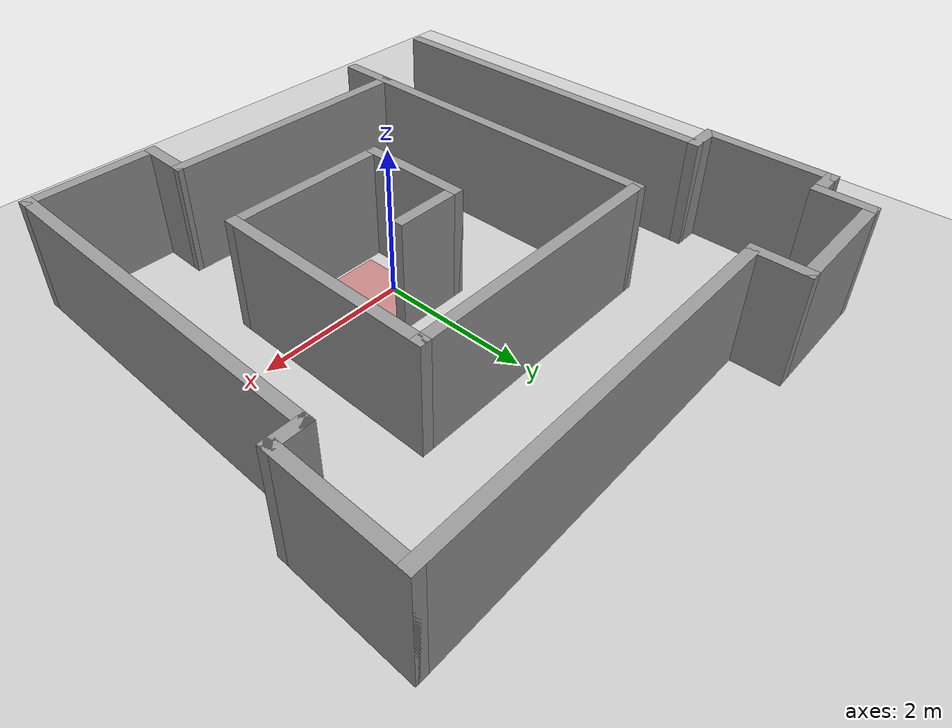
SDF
<sdf version="1.7">
 <world name="default">
  <light name="sun" type="directional">
   <pose>0 0 10 0 -0 0</pose>
   <diffuse>0.8 0.8 0.8 1</diffuse>
   <specular>0.2 0.2 0.2 1</specular>
   <attenuation>
    <range>1000</range>
    <constant>0.9</constant>
    <linear>0.01</linear>
    <quadratic>0.001</quadratic>
   </attenuation>
   <direction>-0.5 0.1 -0.9</direction>
   <spot><inner_angle>0</inner_angle><outer_angle>0</outer_angle><falloff>0</falloff></spot>
  </light>
  <model name="ground_plane">
   <static>1</static>
   <link name="link">
    <collision name="collision">
     <geometry><plane><normal>0 0 1</normal><size>100 100</size></plane></geometry>
     <surface>
      <contact><collide_bitmask>65535</collide_bitmask></contact>
      <friction><ode><mu>100</mu><mu2>50</mu2></ode></friction>
     </surface>
    </collision>
    <visual name="visual">
     <cast_shadows>0</cast_shadows>
     <geometry><plane><normal>0 0 1</normal><size>100 100</size></plane></geometry>
     <material>
      <script><uri>file://media/materials/scripts/gazebo.material</uri><name>Gazebo/Grey</name></script>
     </material>
    </visual>
   </link>
  </model>
  <gravity>0 0 -9.8</gravity>
  <magnetic_field>6e-06 2.3e-05 -4.2e-05</magnetic_field>
  <atmosphere type="adiabatic"/>
  <physics type="ode">
   <max_step_size>0.001</max_step_size>
   <real_time_factor>1</real_time_factor>
   <real_time_update_rate>1000</real_time_update_rate>
  </physics>
  <scene><ambient>0.4 0.4 0.4 1</ambient><background>0.7 0.7 0.7 1</background><shadows>1</shadows></scene>
  <spherical_coordinates>
   <surface_model>EARTH_WGS84</surface_model>
   <latitude_deg>0</latitude_deg>
   <longitude_deg>0</longitude_deg>
   <elevation>0</elevation>
   <heading_deg>0</heading_deg>
  </spherical_coordinates>
  <model name="map_1">
   <pose>-0.194473 0.7387 0 0 -0 0</pose>
   <link name="Wall_0">
    <collision name="Wall_0_Collision">
     <geometry><box><size>5 0.15 1.5</size></box></geometry>
     <pose>0 0 0.75 0 -0 0</pose>
    </collision>
    <visual name="Wall_0_Visual">
     <pose>0 0 0.75 0 -0 0</pose>
     <geometry><box><size>5 0.15 1.5</size></box></geometry>
     <material>
      <script><uri>file://media/materials/scripts/gazebo.material</uri><name>Gazebo/Grey</name></script>
      <ambient>1 1 1 1</ambient>
     </material>
     <meta><layer>0</layer></meta>
    </visual>
    <pose>-3.175 -1.10709 0 0 -0 1.5708</pose>
   </link>
   <link name="Wall_1">
    <collision name="Wall_1_Collision">
     <geometry><box><size>0.5 0.15 1.5</size></box></geometry>
     <pose>0 0 0.75 0 -0 0</pose>
    </collision>
    <visual name="Wall_1_Visual">
     <pose>0 0 0.75 0 -0 0</pose>
     <geometry><box><size>0.5 0.15 1.5</size></box></geometry>
     <material>
      <script><uri>file://media/materials/scripts/gazebo.material</uri><name>Gazebo/Grey</name></script>
      <ambient>1 1 1 1</ambient>
     </material>
     <meta><layer>0</layer></meta>
    </visual>
    <pose>-3.35 1.31791 0 0 -0 3.14159</pose>
   </link>
   <link name="Wall_10">
    <collision name="Wall_10_Collision">
     <geometry><box><size>5.25 0.15 1.5</size></box></geometry>
     <pose>0 0 0.75 0 -0 0</pose>
    </collision>
    <visual name="Wall_10_Visual">
     <pose>0 0 0.75 0 -0 0</pose>
     <geometry><box><size>5.25 0.15 1.5</size></box></geometry>
     <material>
      <script><uri>file://media/materials/scripts/gazebo.material</uri><name>Gazebo/Grey</name></script>
      <ambient>1 1 1 1</ambient>
     </material>
     <meta><layer>0</layer></meta>
    </visual>
    <pose>0.975 2.91791 0 0 -0 0</pose>
   </link>
   <link name="Wall_11">
    <collision name="Wall_11_Collision">
     <geometry><box><size>1.75 0.15 1.5</size></box></geometry>
     <pose>0 0 0.75 0 -0 0</pose>
    </collision>
    <visual name="Wall_11_Visual">
     <pose>0 0 0.75 0 -0 0</pose>
     <geometry><box><size>1.75 0.15 1.5</size></box></geometry>
     <material>
      <script><uri>file://media/materials/scripts/gazebo.material</uri><name>Gazebo/Grey</name></script>
      <ambient>1 1 1 1</ambient>
     </material>
     <meta><layer>0</layer></meta>
    </visual>
    <pose>3.525 2.11791 0 0 -0 -1.5708</pose>
   </link>
   <link name="Wall_12">
    <collision name="Wall_12_Collision">
     <geometry><box><size>0.5 0.15 1.5</size></box></geometry>
     <pose>0 0 0.75 0 -0 0</pose>
    </collision>
    <visual name="Wall_12_Visual">
     <pose>0 0 0.75 0 -0 0</pose>
     <geometry><box><size>0.5 0.15 1.5</size></box></geometry>
     <material>
      <script><uri>file://media/materials/scripts/gazebo.material</uri><name>Gazebo/Grey</name></script>
      <ambient>1 1 1 1</ambient>
     </material>
     <meta><layer>0</layer></meta>
    </visual>
    <pose>3.35 1.31791 0 0 -0 3.14159</pose>
   </link>
   <link name="Wall_13">
    <collision name="Wall_13_Collision">
     <geometry><box><size>5 0.15 1.5</size></box></geometry>
     <pose>0 0 0.75 0 -0 0</pose>
    </collision>
    <visual name="Wall_13_Visual">
     <pose>0 0 0.75 0 -0 0</pose>
     <geometry><box><size>5 0.15 1.5</size></box></geometry>
     <material>
      <script><uri>file://media/materials/scripts/gazebo.material</uri><name>Gazebo/Grey</name></script>
      <ambient>1 1 1 1</ambient>
     </material>
     <meta><layer>0</layer></meta>
    </visual>
    <pose>3.175 -1.10709 0 0 -0 -1.5708</pose>
   </link>
   <link name="Wall_14">
    <collision name="Wall_14_Collision">
     <geometry><box><size>1.75 0.15 1.5</size></box></geometry>
     <pose>0 0 0.75 0 -0 0</pose>
    </collision>
    <visual name="Wall_14_Visual">
     <pose>0 0 0.75 0 -0 0</pose>
     <geometry><box><size>1.75 0.15 1.5</size></box></geometry>
     <material>
      <script><uri>file://media/materials/scripts/gazebo.material</uri><name>Gazebo/Grey</name></script>
      <ambient>1 1 1 1</ambient>
     </material>
     <meta><layer>0</layer></meta>
    </visual>
    <pose>2.375 -3.53209 0 0 -0 3.14159</pose>
   </link>
   <link name="Wall_15">
    <collision name="Wall_15_Collision">
     <geometry><box><size>0.75 0.15 1.5</size></box></geometry>
     <pose>0 0 0.75 0 -0 0</pose>
    </collision>
    <visual name="Wall_15_Visual">
     <pose>0 0 0.75 0 -0 0</pose>
     <geometry><box><size>0.75 0.15 1.5</size></box></geometry>
     <material>
      <script><uri>file://media/materials/scripts/gazebo.material</uri><name>Gazebo/Grey</name></script>
      <ambient>1 1 1 1</ambient>
     </material>
     <meta><layer>0</layer></meta>
    </visual>
    <pose>1.575 -3.23209 0 0 -0 1.5708</pose>
   </link>
   <link name="Wall_18">
    <collision name="Wall_18_Collision">
     <geometry><box><size>5 0.15 1.5</size></box></geometry>
     <pose>0 0 0.75 0 -0 0</pose>
    </collision>
    <visual name="Wall_18_Visual">
     <pose>0 0 0.75 0 -0 0</pose>
     <geometry><box><size>5 0.15 1.5</size></box></geometry>
     <material>
      <script><uri>file://media/materials/scripts/gazebo.material</uri><name>Gazebo/Grey</name></script>
      <ambient>1 1 1 1</ambient>
     </material>
     <meta><layer>0</layer></meta>
    </visual>
    <pose>-1.787 -1.08609 0 0 -0 1.5708</pose>
   </link>
   <link name="Wall_19">
    <collision name="Wall_19_Collision">
     <geometry><box><size>3.75 0.15 1.5</size></box></geometry>
     <pose>0 0 0.75 0 -0 0</pose>
    </collision>
    <visual name="Wall_19_Visual">
     <pose>0 0 0.75 0 -0 0</pose>
     <geometry><box><size>3.75 0.15 1.5</size></box></geometry>
     <material>
      <script><uri>file://media/materials/scripts/gazebo.material</uri><name>Gazebo/Grey</name></script>
      <ambient>1 1 1 1</ambient>
     </material>
     <meta><layer>0</layer></meta>
    </visual>
    <pose>0.013 1.33891 0 0 -0 0</pose>
   </link>
   <link name="Wall_2">
    <collision name="Wall_2_Collision">
     <geometry><box><size>1.75 0.15 1.5</size></box></geometry>
     <pose>0 0 0.75 0 -0 0</pose>
    </collision>
    <visual name="Wall_2_Visual">
     <pose>0 0 0.75 0 -0 0</pose>
     <geometry><box><size>1.75 0.15 1.5</size></box></geometry>
     <material>
      <script><uri>file://media/materials/scripts/gazebo.material</uri><name>Gazebo/Grey</name></script>
      <ambient>1 1 1 1</ambient>
     </material>
     <meta><layer>0</layer></meta>
    </visual>
    <pose>-3.525 2.11791 0 0 -0 1.5708</pose>
   </link>
   <link name="Wall_20">
    <collision name="Wall_20_Collision">
     <geometry><box><size>3 0.15 1.5</size></box></geometry>
     <pose>0 0 0.75 0 -0 0</pose>
    </collision>
    <visual name="Wall_20_Visual">
     <pose>0 0 0.75 0 -0 0</pose>
     <geometry><box><size>3 0.15 1.5</size></box></geometry>
     <material>
      <script><uri>file://media/materials/scripts/gazebo.material</uri><name>Gazebo/Grey</name></script>
      <ambient>1 1 1 1</ambient>
     </material>
     <meta><layer>0</layer></meta>
    </visual>
    <pose>1.813 -0.086086 0 0 -0 -1.5708</pose>
   </link>
   <link name="Wall_21">
    <collision name="Wall_21_Collision">
     <geometry><box><size>2.25 0.15 1.5</size></box></geometry>
     <pose>0 0 0.75 0 -0 0</pose>
    </collision>
    <visual name="Wall_21_Visual">
     <pose>0 0 0.75 0 -0 0</pose>
     <geometry><box><size>2.25 0.15 1.5</size></box></geometry>
     <material>
      <script><uri>file://media/materials/scripts/gazebo.material</uri><name>Gazebo/Grey</name></script>
      <ambient>1 1 1 1</ambient>
     </material>
     <meta><layer>0</layer></meta>
    </visual>
    <pose>0.763 -1.51109 0 0 -0 3.14159</pose>
   </link>
   <link name="Wall_22">
    <collision name="Wall_22_Collision">
     <geometry><box><size>1.5 0.15 1.5</size></box></geometry>
     <pose>0 0 0.75 0 -0 0</pose>
    </collision>
    <visual name="Wall_22_Visual">
     <pose>0 0 0.75 0 -0 0</pose>
     <geometry><box><size>1.5 0.15 1.5</size></box></geometry>
     <material>
      <script><uri>file://media/materials/scripts/gazebo.material</uri><name>Gazebo/Grey</name></script>
      <ambient>1 1 1 1</ambient>
     </material>
     <meta><layer>0</layer></meta>
    </visual>
    <pose>-0.287 -0.836086 0 0 -0 1.5708</pose>
   </link>
   <link name="Wall_23">
    <collision name="Wall_23_Collision">
     <geometry><box><size>1 0.15 1.5</size></box></geometry>
     <pose>0 0 0.75 0 -0 0</pose>
    </collision>
    <visual name="Wall_23_Visual">
     <pose>0 0 0.75 0 -0 0</pose>
     <geometry><box><size>1 0.15 1.5</size></box></geometry>
     <material>
      <script><uri>file://media/materials/scripts/gazebo.material</uri><name>Gazebo/Grey</name></script>
      <ambient>1 1 1 1</ambient>
     </material>
     <meta><layer>0</layer></meta>
    </visual>
    <pose>0.138 -0.161086 0 0 -0 0</pose>
   </link>
   <link name="Wall_25">
    <collision name="Wall_25_Collision">
     <geometry><box><size>3.49004 0.15 1.5</size></box></geometry>
     <pose>0 0 0.75 0 -0 0</pose>
    </collision>
    <visual name="Wall_25_Visual">
     <pose>0 0 0.75 0 -0 0</pose>
     <geometry><box><size>3.49004 0.15 1.5</size></box></geometry>
     <material>
      <script><uri>file://media/materials/scripts/gazebo.material</uri><name>Gazebo/Grey</name></script>
      <ambient>1 1 1 1</ambient>
     </material>
     <meta><layer>0</layer></meta>
    </visual>
    <pose>-0.0945 -2.90709 0 0 -0 -0.014973</pose>
   </link>
   <link name="Wall_3">
    <collision name="Wall_3_Collision">
     <geometry><box><size>0.5 0.15 1.5</size></box></geometry>
     <pose>0 0 0.75 0 -0 0</pose>
    </collision>
    <visual name="Wall_3_Visual">
     <pose>0 0 0.75 0 -0 0</pose>
     <geometry><box><size>0.5 0.15 1.5</size></box></geometry>
     <material>
      <script><uri>file://media/materials/scripts/gazebo.material</uri><name>Gazebo/Grey</name></script>
      <ambient>1 1 1 1</ambient>
     </material>
     <meta><layer>0</layer></meta>
    </visual>
    <pose>-3.35 2.91791 0 0 -0 0</pose>
   </link>
   <link name="Wall_7">
    <collision name="Wall_7_Collision">
     <geometry><box><size>0.764 0.15 1.5</size></box></geometry>
     <pose>0 0 0.75 0 -0 0</pose>
    </collision>
    <visual name="Wall_7_Visual">
     <pose>0 0 0.75 0 -0 0</pose>
     <geometry><box><size>0.764 0.15 1.5</size></box></geometry>
     <material>
      <script><uri>file://media/materials/scripts/gazebo.material</uri><name>Gazebo/Grey</name></script>
      <ambient>1 1 1 1</ambient>
     </material>
     <meta><layer>0</layer></meta>
    </visual>
    <pose>-3.175 3.22492 0 0 -0 1.5708</pose>
   </link>
   <link name="Wall_8">
    <collision name="Wall_8_Collision">
     <geometry><box><size>1.75 0.15 1.5</size></box></geometry>
     <pose>0 0 0.75 0 -0 0</pose>
    </collision>
    <visual name="Wall_8_Visual">
     <pose>0 0 0.75 0 -0 0</pose>
     <geometry><box><size>1.75 0.15 1.5</size></box></geometry>
     <material>
      <script><uri>file://media/materials/scripts/gazebo.material</uri><name>Gazebo/Grey</name></script>
      <ambient>1 1 1 1</ambient>
     </material>
     <meta><layer>0</layer></meta>
    </visual>
    <pose>-2.375 3.53191 0 0 -0 0</pose>
   </link>
   <link name="Wall_9">
    <collision name="Wall_9_Collision">
     <geometry><box><size>0.764343 0.15 1.5</size></box></geometry>
     <pose>0 0 0.75 0 -0 0</pose>
    </collision>
    <visual name="Wall_9_Visual">
     <pose>0 0 0.75 0 -0 0</pose>
     <geometry><box><size>0.764343 0.15 1.5</size></box></geometry>
     <material>
      <script><uri>file://media/materials/scripts/gazebo.material</uri><name>Gazebo/Grey</name></script>
      <ambient>1 1 1 1</ambient>
     </material>
     <meta><layer>0</layer></meta>
    </visual>
    <pose>-1.575 3.22492 0 0 -0 -1.5708</pose>
   </link>
   <static>1</static>
  </model>
  <model name="map_1_spawn">
   <link name="spawn_1">
    <inertial>
     <mass>0.0280464</mass>
     <inertia>
      <ixx>0.00233904</ixx>
      <ixy>0</ixy>
      <ixz>0</ixz>
      <iyy>0.00233904</iyy>
      <iyz>0</iyz>
      <izz>0.0046744</izz>
     </inertia>
    </inertial>
    <visual name="visual">
     <geometry><box><size>0.385001 0.348854 0.028046</size></box></geometry>
     <material>
      <lighting>1</lighting>
      <script><uri>file://media/materials/scripts/gazebo.material</uri><name>Gazebo/Green</name></script>
      <shader type="pixel"><normal_map>__default__</normal_map></shader>
      <ambient>0 1 0 1</ambient>
      <diffuse>0 1 0 1</diffuse>
      <specular>0.1 0.1 0.1 1</specular>
      <emissive>0 0 0 1</emissive>
     </material>
     <transparency>0.6</transparency>
    </visual>
   </link>
   <static>1</static>
   <pose>-2.71386 -2.23256 0 0 -0 0</pose>
  </model>
  <model name="map_1_target">
   <link name="target_1">
    <inertial>
     <mass>0.05354</mass>
     <inertia>
      <ixx>0.00514218</ixx>
      <ixy>0</ixy>
      <ixz>0</ixz>
      <iyy>0.00753232</iyy>
      <iyz>0</iyz>
      <izz>0.0126613</izz>
     </inertia>
    </inertial>
    <visual name="visual">
     <geometry><box><size>1.29875 1.07287 0.038417</size></box></geometry>
     <material>
      <lighting>1</lighting>
      <script><uri>file://media/materials/scripts/gazebo.material</uri><name>Gazebo/Red</name></script>
      <shader type="pixel"><normal_map>__default__</normal_map></shader>
      <ambient>1 0 0 1</ambient>
      <diffuse>1 0 0 1</diffuse>
      <specular>0.1 0.1 0.1 1</specular>
      <emissive>0 0 0 1</emissive>
     </material>
     <transparency>0.6</transparency>
    </visual>
   </link>
   <static>1</static>
   <pose>0.43944 -0.10982 0 0 -0 0</pose>
  </model>
 </world>
</sdf>
